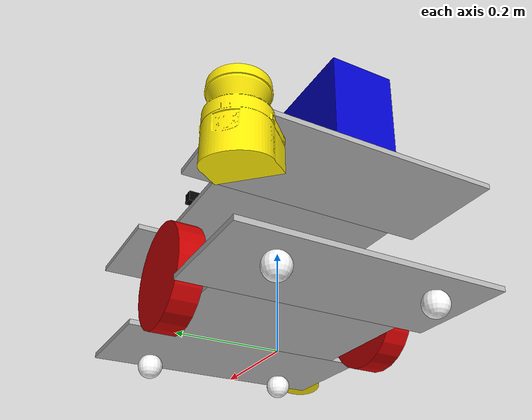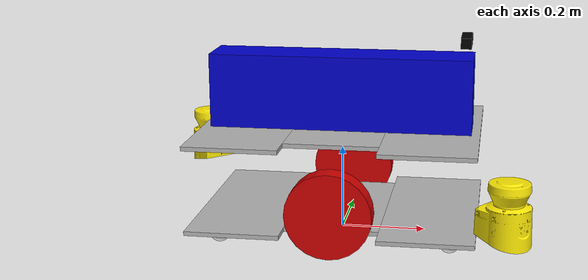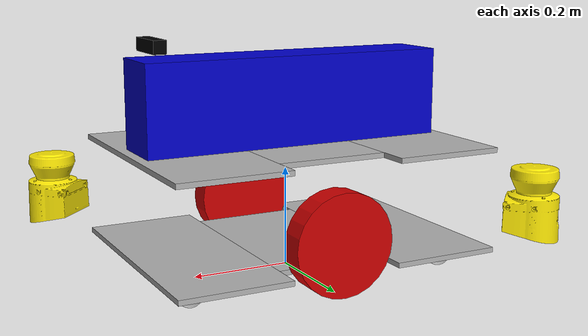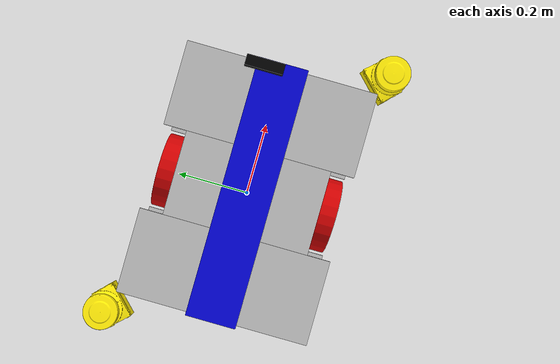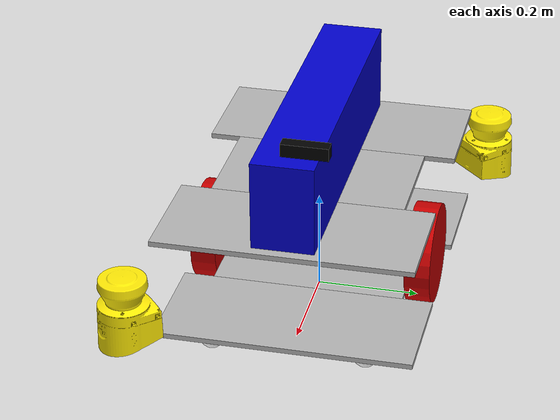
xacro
<?xml version="1.0"?>
<robot name="air" xmlns:xacro="http://www.ros.org/wiki/xacro">

  <material name="blue">
    <color rgba="0 0 0.8 1"/>
  </material>

  <material name="red">
    <color rgba="0.8 0 0 1"/>
  </material>

  <material name="white">
    <color rgba="1 1 1 1"/>
  </material>

  <material name="yellow">
    <color rgba="1.0 0.92 0.016 1"/>
  </material>

  <material name="grey">
    <color rgba="0.7 0.7 0.7 1.0"/>
  </material>

    <!-- Define some commonly used intertial properties  -->
  <xacro:macro name="box_inertia" params="m w h d">
    <inertial>
      <origin xyz="0 0 0" rpy="${pi/2} 0 ${pi/2}"/>
      <mass value="${m}"/>
      <inertia ixx="${(m/12) * (h*h + d*d)}" ixy="0.0" ixz="0.0" iyy="${(m/12) * (w*w + d*d)}" iyz="0.0" izz="${(m/12) * (w*w + h*h)}"/>
    </inertial>
  </xacro:macro>

  <xacro:macro name="cylinder_inertia" params="m r h">
    <inertial>
      <origin xyz="0 0 0" rpy="${pi/2} 0 0" />
      <mass value="${m}"/>
      <inertia ixx="${(m/12) * (3*r*r + h*h)}" ixy = "0" ixz = "0" iyy="${(m/12) * (3*r*r + h*h)}" iyz = "0" izz="${(m/2) * (r*r)}"/>
    </inertial>
  </xacro:macro>

  <xacro:macro name="sphere_inertia" params="m r">
    <inertial>
      <mass value="${m}"/>
      <inertia ixx="${(2/5) * m * (r*r)}" ixy="0.0" ixz="0.0" iyy="${(2/5) * m * (r*r)}" iyz="0.0" izz="${(2/5) * m * (r*r)}"/>
    </inertial>
  </xacro:macro>

  <!-- Define robot constants -->
  <xacro:property name="base_width" value="0.5"/>
  <xacro:property name="base_length" value="0.66"/>
  <xacro:property name="base_height" value="0.2"/>
  <xacro:property name="base_tick" value="0.01"/>
  <xacro:property name="base_panel_length" value="0.22"/>
  <xacro:property name="base_panel_width" value="0.38"/>

  <xacro:property name="battery_width" value="0.12"/>
  <xacro:property name="battery_length" value="0.62"/>
  <xacro:property name="battery_height" value="0.18"/>

  <xacro:property name="wheel_radius" value="0.10"/>
  <xacro:property name="wheel_width" value="0.05"/>
  <xacro:property name="wheel_ygap" value="-0.035"/>
  <xacro:property name="wheel_zoff" value="0.05"/>
  <xacro:property name="wheel_xoff" value="0.0"/>

  <xacro:property name="caster_xoff" value="0.27"/>
  <xacro:property name="caster_yoff" value="0.15"/>

<!-- Robot Base -->
  <link name="base_link">
    <visual>
      <origin xyz="0.0 0.0 ${wheel_zoff}" rpy="0 0 0"/>
      <geometry>
        <box size="${base_panel_length} ${base_panel_width} ${base_tick}"/>
      </geometry>
      <material name="grey"/>
    </visual>

    <visual>
      <origin xyz="${(-1.0*base_panel_length)} 0.0 ${wheel_zoff}" rpy="0 0 0"/>
      <geometry>
        <box size="${base_panel_length} ${base_width} ${base_tick}"/>
      </geometry>
       <material name="grey"/>
    </visual>

    <visual>
      <origin xyz="${(base_panel_length)} 0.0 ${wheel_zoff}" rpy="0 0 0"/>
      <geometry>
        <box size="${base_panel_length} ${base_width} ${base_tick}"/>
      </geometry>
       <material name="grey"/>
    </visual>

    <visual>
      <origin xyz="0.0 0.0 ${wheel_zoff+base_height}" rpy="0 0 0"/>
      <geometry>
        <box size="${base_panel_length} ${base_panel_width} ${base_tick}"/>
      </geometry>
       <material name="grey"/>
    </visual>

    <visual>
      <origin xyz="${(-1.0*base_panel_length)} 0.0 ${wheel_zoff+base_height}" rpy="0 0 0"/>
      <geometry>
        <box size="${base_panel_length} ${base_width} ${base_tick}"/>
      </geometry>
       <material name="grey"/>
    </visual>

    <visual>
      <origin xyz="${(base_panel_length)} 0.0 ${wheel_zoff+base_height}" rpy="0 0 0"/>
      <geometry>
        <box size="${base_panel_length} ${base_width} ${base_tick}"/>
      </geometry>
       <material name="grey"/>
    </visual>

    <collision>
      <origin xyz="0.0 0.0 ${(base_height/2+wheel_zoff)}" rpy="0 0 0"/>
      <geometry>
        <box size="${base_length} ${base_width} ${base_height}"/>
      </geometry>
    </collision>

    <xacro:box_inertia m="15" w="${base_width}" d="${base_length}" h="${base_height}"/>
  </link>

<!-- Robot battery -->
  <link name="battery_link">
    <visual>
      <origin xyz="0.0 0.0 0.0" rpy="0 0 0"/>
      <geometry>
        <box size="${battery_length} ${battery_width} ${battery_height}"/>
      </geometry>
      <material name="blue"/>

    </visual>
      <collision>
      <origin xyz="0.0 0.0 0.0" rpy="0 0 0"/>
      <geometry>
        <box size="${battery_length} ${battery_width} ${battery_height}"/>
      </geometry>
    </collision>

    <xacro:box_inertia m="16" w="${battery_width}" d="${battery_length}" h="${battery_height}"/>
  </link>

  <joint name="battery_joint" type="fixed">
    <parent link="base_link"/>
    <child link="battery_link"/>
    <origin xyz="0.0 0.0 ${wheel_zoff+base_height+battery_height/2.0}" rpy="0 0 0"/>
  </joint>

  <!-- Wheels -->
  <xacro:macro name="wheel" params="prefix x_reflect y_reflect">
    <link name="joint_link_${prefix}">
      <visual>
        <origin xyz="0 0 0" rpy="0 0 0"/>
        <geometry>
          <cylinder radius="${wheel_radius}" length="${wheel_width}"/>
        </geometry>
        <material name="red"/>
      </visual>

      <collision>
        <origin xyz="0 0 0" rpy="0 0 0"/>
        <geometry>
          <cylinder radius="${wheel_radius}" length="${wheel_width}"/>
        </geometry>
      </collision>

      <xacro:cylinder_inertia m="0.5" r="${wheel_radius}" h="${wheel_width}"/>
    </link>

    <joint name="joint_${prefix}" type="continuous">
      <parent link="base_link"/>
      <child link="joint_link_${prefix}"/>
      <origin xyz="${x_reflect*wheel_xoff} ${y_reflect*(base_width/2+wheel_ygap)} ${wheel_radius}" rpy="${y_reflect*pi/2} 0 0"/>
      <axis xyz="0 0 1"/>
      <dynamics damping="10" friction="5"/>
    </joint>
  </xacro:macro>

  <xacro:wheel prefix="1" x_reflect="-1" y_reflect="1" />
  <xacro:wheel prefix="2" x_reflect="-1" y_reflect="-1" />

  <link name="front_left_caster">
    <visual>
      <geometry>
        <sphere radius="${(wheel_zoff/2)}"/>
      </geometry>
      <material name="white"/>
    </visual>

    <collision>
      <origin xyz="0 0 0" rpy="0 0 0"/>
      <geometry>
        <sphere radius="${(wheel_zoff/2)}"/>
      </geometry>
    </collision>

    <xacro:sphere_inertia m="0.5" r="${(base_height/2+wheel_zoff)}"/>
  </link>

  <joint name="front_left_caster_joint" type="fixed">
    <parent link="base_link"/>
    <child link="front_left_caster"/>
    <origin xyz="${caster_xoff} ${caster_yoff} ${(wheel_zoff/2)}" rpy="0 0 0"/>
  </joint>

  <link name="front_right_caster">
    <visual>
      <geometry>
        <sphere radius="${(wheel_zoff/2)}"/>
      </geometry>
      <material name="white"/>
    </visual>

    <collision>
      <origin xyz="0 0 0" rpy="0 0 0"/>
      <geometry>
        <sphere radius="${(wheel_zoff/2)}"/>
      </geometry>
    </collision>

    <xacro:sphere_inertia m="0.5" r="${(base_height/2+wheel_zoff)}"/>
  </link>

  <joint name="front_right_caster_joint" type="fixed">
    <parent link="base_link"/>
    <child link="front_right_caster"/>
    <origin xyz="${caster_xoff} ${-1.0*caster_yoff} ${(wheel_zoff/2)}" rpy="0 0 0"/>
  </joint>

  <link name="rear_left_caster">
    <visual>
      <geometry>
        <sphere radius="${(wheel_zoff/2)}"/>
      </geometry>
      <material name="white"/>
    </visual>

    <collision>
      <origin xyz="0 0 0" rpy="0 0 0"/>
      <geometry>
        <sphere radius="${(wheel_zoff/2)}"/>
      </geometry>
    </collision>

    <xacro:sphere_inertia m="0.5" r="${(base_height/2+wheel_zoff)}"/>
  </link>

  <joint name="rear_left_caster_joint" type="fixed">
    <parent link="base_link"/>
    <child link="rear_left_caster"/>
    <origin xyz="${-1.0*caster_xoff} ${caster_yoff} ${(wheel_zoff/2)}" rpy="0 0 0"/>
  </joint>

  <link name="rear_right_caster">
    <visual>
      <geometry>
        <sphere radius="${(wheel_zoff/2)}"/>
      </geometry>
      <material name="white"/>
    </visual>

    <collision>
      <origin xyz="0 0 0" rpy="0 0 0"/>
      <geometry>
        <sphere radius="${(wheel_zoff/2)}"/>
      </geometry>
    </collision>

    <xacro:sphere_inertia m="0.5" r="${(base_height/2+wheel_zoff)}"/>
  </link>

  <joint name="rear_right_caster_joint" type="fixed">
    <parent link="base_link"/>
    <child link="rear_right_caster"/>
    <origin xyz="${-1.0*caster_xoff} ${-1.0*caster_yoff} ${(wheel_zoff/2)}" rpy="0 0 0"/>
  </joint>

  <!-- ****************************** LASER 0 *****************************    -->
  <link name="laser_link_0">
    <inertial>
      <origin xyz="0 0 0" rpy="0 0 0"/>
      <mass value="0.125"/>
      <inertia ixx="0.001" ixy="0" ixz="0" iyy="0.001" iyz="0" izz="0.001" />
    </inertial>
    <collision>
      <origin xyz="0 0 0" rpy="0 0 0"/>
      <geometry>
        <cylinder radius="0.0508" length="0.18"/>
      </geometry>
    </collision>
    <visual>
      <origin xyz="0 0 0" rpy="3.1415 0 -1.5708"/>
      <geometry>
        <mesh filename="package://ethercat_diff_drive/description/config/meshes/s300.obj" scale="0.001 0.001 0.001"/>
      </geometry>
        <material name="yellow"/>
    </visual>
  </link>

  <joint name="laser_joint_0" type="fixed">
    <parent link="base_link"/>
    <child link="laser_link_0"/>
    <origin xyz="0.4 -0.28 0.18" rpy="0 0 -0.7854"/>
  </joint>

    <!-- ****************************** LASER 1 *****************************    -->
  <link name="laser_link_1">
    <inertial>
      <origin xyz="0 0 0" rpy="0 0 0"/>
      <mass value="0.125"/>
      <inertia ixx="0.001" ixy="0" ixz="0" iyy="0.001" iyz="0" izz="0.001" />
    </inertial>
    <collision>
      <origin xyz="0 0 0" rpy="0 0 0"/>
      <geometry>
        <cylinder radius="0.0508" length="0.18"/>
      </geometry>
    </collision>
    <visual>
      <origin xyz="0 0 0" rpy="3.1415 0 -1.5708"/>
      <geometry>
        <mesh filename="package://ethercat_diff_drive/description/config/meshes/s300.obj" scale="0.001 0.001 0.001"/>
      </geometry>
      <material name="yellow"/>
    </visual>
  </link>

  <joint name="laser_joint_1" type="fixed">
    <parent link="base_link"/>
    <child link="laser_link_1"/>
    <origin xyz="-0.4 0.28 0.18" rpy="0 0 2.3562"/>
  </joint>

  <!-- RealSense D435i Camera -->
  <link name="camera_link">
    <visual>
      <geometry>
        <box size="0.025 0.09 0.025"/> <!-- Temsili kutu -->
      </geometry>
      <origin xyz="0 0 0" rpy="0 0 0"/>
      <material name="black">
        <color rgba="0 0 0 1"/>
      </material>
    </visual>
    <inertial>
      <mass value="0.1"/>
      <inertia ixx="0.0001" ixy="0.0" ixz="0.0"
               iyy="0.0001" iyz="0.0"
               izz="0.0001"/>
    </inertial>
  </link>

  <joint name="camera_joint" type="fixed">
    <parent link="base_link"/>
    <child link="camera_link"/>
    <origin xyz="0.29 0.04 0.46" rpy="0 0 0"/>
  </joint>

  <xacro:include filename="$(find ethercat_diff_drive)/description/ros2_control/motor_drive_el7221.xacro" />
  <xacro:motor_drive/>
</robot>
